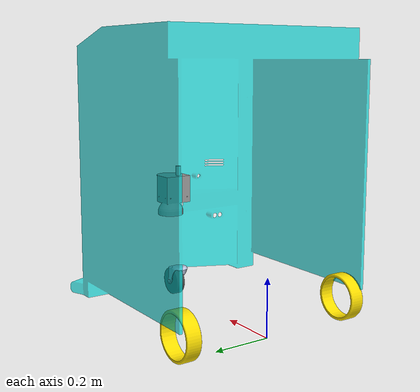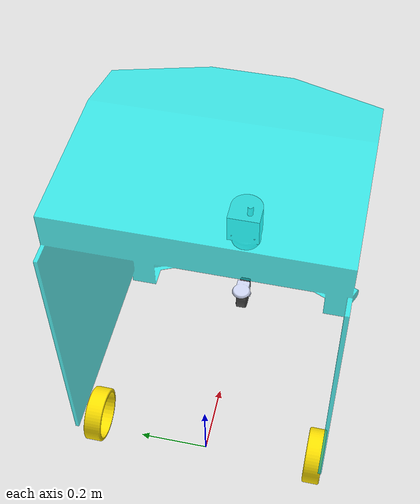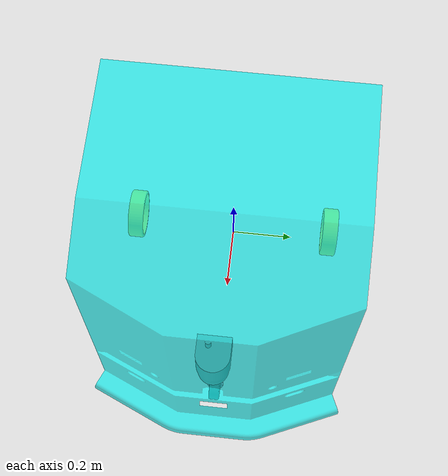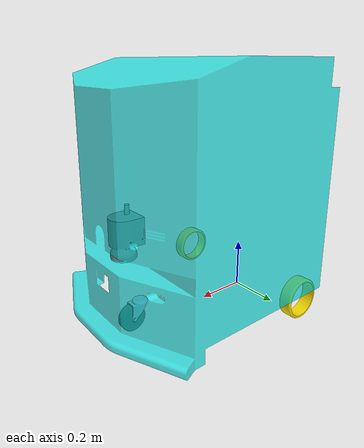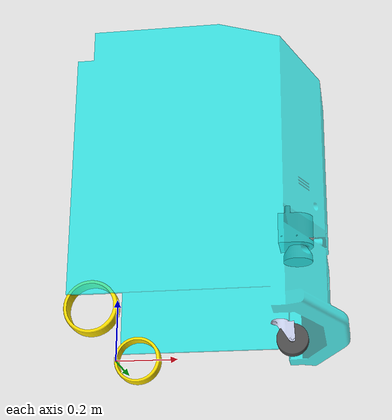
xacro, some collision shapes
<?xml version="1.0"?>
<robot name="d8_1000" xmlns:xacro="http://www.ros.org/wiki/xacro">
<xacro:property name="M_PI" value="3.1415926"/>
<xacro:property name="pkg" value="$(find dhc_houdar_pkg)/urdf/scrubot/d8_1000" />
<xacro:property name="mesh_dir" value="package://dhc_houdar_pkg/urdf/scrubot/d8_1000/mesh"/>

<xacro:include filename="${pkg}/materials.xacro" />

<xacro:include filename="${pkg}/inertial.xacro" />

<xacro:include filename="${pkg}/chassis.xacro" />

<xacro:include filename="${pkg}/driving_wheel.xacro" />

<xacro:include filename="${pkg}/caster_wheel.xacro" />

<xacro:include filename="${pkg}/sensor/sick_551.xacro" />

<xacro:include filename="${pkg}/sensor/sonar_ks106.xacro" />

<xacro:include filename="${pkg}/sensor/imu.xacro" />

<xacro:include filename="${pkg}/gazebo.xacro" />

<!-- base_footprint -->
<xacro:property name="base_name" value="base_footprint"/>
<link name="${base_name}">
</link>

<xacro:property name="base_link_name" value="base_link"/>

<!-- body -->
<xacro:chassis  name="${base_link_name}" parent_link="${base_name}" meshes="${mesh_dir}/chassis_simple.stl"  >
</xacro:chassis>

<!-- driving wheel -->
<xacro:driving_wheel wheel_prefix="left" parent_link="${base_link_name}" left_right="1" mesh="${mesh_dir}/driving_wheel_surface.stl" >
 </xacro:driving_wheel>

<xacro:driving_wheel wheel_prefix="right" parent_link="${base_link_name}" left_right="-1" mesh="${mesh_dir}/driving_wheel_surface.stl" >
 </xacro:driving_wheel>

<!-- caster wheel -->
<xacro:caster_wheel wheel_prefix="front" parent_link="${base_link_name}" left_right="1" mesh="${mesh_dir}" >
 </xacro:caster_wheel>

<!-- laser -->
<xacro:laser name="sick_laser_551" parent_link="${base_link_name}"  mesh="${mesh_dir}/sick_551.stl" >
 </xacro:laser>

<!-- sonar -->
<xacro:sonar name="s106_sonar" parent_link="${base_link_name}" mesh="${mesh_dir}/sonar.stl" >
</xacro:sonar>

</robot>

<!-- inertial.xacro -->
<!-- Thanks to Martin Guenther
  see https://github.com/uos/uos_tools/blob/fuerte/uos_common_urdf/common.xacro and
  see http://answers.gazebosim.org/question/4372/the-inertia-matrix-explained/ -->
<robot xmlns:xacro="http://www.ros.org/wiki/xacro">
  <!--xacro:property name="M_PI" value="3.1415926535897931" /-->

  <!-- see https://secure.wikimedia.org/wikipedia/en/wiki/List_of_moment_of_inertia_tensors -->

  <!-- #################### versions without origin #################### -->
  <xacro:macro name="sphere_inertial" params="radius mass">
    <inertial>
      <mass value="${mass}" />
      <origin xyz="0 0 0" />
      <inertia ixx="${0.4 * mass * radius * radius}" ixy="0.0" ixz="0.0"
        iyy="${0.4 * mass * radius * radius}" iyz="0.0"
        izz="${0.4 * mass * radius * radius}" />
    </inertial>
  </xacro:macro>

  <xacro:macro name="cylinder_inertial" params="radius length mass">
    <inertial>
      <mass value="${mass}" />
      <origin xyz="0 0 0" />
      <inertia ixx="${0.0833333 * mass * (3 * radius * radius + length * length)}" ixy="0.0" ixz="0.0"
        iyy="${0.0833333 * mass * (3 * radius * radius + length * length)}" iyz="0.0"
        izz="${0.5 * mass * radius * radius}" />
    </inertial>
  </xacro:macro>

  <xacro:macro name="box_inertial" params="x y z mass">
    <inertial>
      <mass value="${mass}" />
      <origin xyz="0 0 0" />
      <inertia ixx="${0.0833333 * mass * (y*y + z*z)}" ixy="0.0" ixz="0.0"
        iyy="${0.0833333 * mass * (x*x + z*z)}" iyz="0.0"
        izz="${0.0833333 * mass * (x*x + y*y)}" />
    </inertial>
  </xacro:macro>

  <!-- #################### versions with origin #################### -->
  <xacro:macro name="sphere_inertial_with_origin" params="radius mass *origin">
    <inertial>
      <mass value="${mass}" />
      <insert_block name="origin" />
      <inertia ixx="${0.4 * mass * radius * radius}" ixy="0.0" ixz="0.0"
        iyy="${0.4 * mass * radius * radius}" iyz="0.0"
        izz="${0.4 * mass * radius * radius}" />
    </inertial>
  </xacro:macro>

  <xacro:macro name="cylinder_inertial_with_origin" params="radius length mass *origin">
    <inertial>
      <mass value="${mass}" />
      <insert_block name="origin" />
      <inertia ixx="${0.0833333 * mass * (3 * radius * radius + length * length)}" ixy="0.0" ixz="0.0"
        iyy="${0.0833333 * mass * (3 * radius * radius + length * length)}" iyz="0.0"
        izz="${0.5 * mass * radius * radius}" />
    </inertial>
  </xacro:macro>

  <xacro:macro name="box_inertial_with_origin" params="x y z mass *origin">
    <inertial>
      <mass value="${mass}" />
      <insert_block name="origin" />
      <inertia ixx="${0.0833333 * mass * (y*y + z*z)}" ixy="0.0" ixz="0.0"
        iyy="${0.0833333 * mass * (x*x + z*z)}" iyz="0.0"
        izz="${0.0833333 * mass * (x*x + y*y)}" />
    </inertial>
  </xacro:macro>

</robot>

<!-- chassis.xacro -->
<robot xmlns:xacro="http://www.ros.org/wiki/xacro">
 <!--xacro:property name="M_PI" value="3.14159"/-->
  <!-- Base Properties -->
  <xacro:property name="mass_base" value="100.0" />

  <xacro:property name="base_x_size" value="0.6" />
  <xacro:property name="base_y_size" value="0.57" />
  <xacro:property name="base_z_size" value="0.68" />

  <xacro:property name="driving_wheel2base_rear_dist" value="0.075" />
  <xacro:property name="driving_wheel2ground_dist" value="0.188" />
  <xacro:property name="crash_resistant_edge_length" value="0.76625" />
  <xacro:property name="crash_resistant_edge_down2ground" value="0.0554" />

<xacro:property name="base_down2ground" value="0.156" />

  <!-- conf for chassis_simple.stl -->
<xacro:property name="offset_x" value="${-driving_wheel2base_rear_dist}" />
<xacro:property name="offset_y" value="${-crash_resistant_edge_length/2}" />
<xacro:property name="offset_z" value="${crash_resistant_edge_down2ground}" />

 <xacro:macro name="default_inertial" params="mass">
    <inertial>
      <mass value="${mass}" />
      <inertia ixx="1.0" ixy="0.0" ixz="0.0" iyy="1.0" iyz="0.0" izz="1.0" />
    </inertial>
  </xacro:macro>

  <xacro:macro name="chassis" params="name parent_link meshes">

    <link name="${name}">

       <visual>
        <origin xyz="${offset_x} ${offset_y} ${offset_z}" rpy="0 0 0" />
         <!--origin xyz="${base_x_size/2.0-driving_wheel2base_rear_dist} 0 ${base_z_size/2.0+base_down2ground}" rpy="0 0 0" /-->
        <geometry>
          <mesh filename="${meshes}"/>
          <!--box size="${base_x_size} ${base_y_size} ${base_z_size}" /-->
        </geometry>
        <xacro:insert_block name="material_Azure2" />
      </visual>

      <collision>
       <!--origin xyz="${offset_x} ${offset_y} ${offset_z}" rpy="0 0 0" /-->
       <origin xyz="${base_x_size/2.0-driving_wheel2base_rear_dist} 0 ${base_z_size/2.0+base_down2ground}" rpy="0 0 0" />
        <geometry>
          <!--mesh filename="${meshes}"/-->
          <box size="${base_x_size} ${base_y_size} ${base_z_size}" />
        </geometry>
      </collision>
      <xacro:default_inertial mass="${mass_base}"/>
      <!--xacro:box_inertial x="${base_x_size}" y="${base_y_size}"  z="${base_z_size}" mass="${mass_base}" /-->
    </link>

    <joint name="${parent_link}_${name}_joint" type="fixed">
      <parent link="${parent_link}"/>
      <child link="${name}"/>
      <origin xyz="0 0 0" rpy="0 0 0" />
    </joint>

    <gazebo reference="${name}">
      <material>Gazebo/Blue</material>
    </gazebo>

  </xacro:macro>
</robot>

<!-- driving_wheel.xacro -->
<robot xmlns:xacro="http://www.ros.org/wiki/xacro">

  <!--xacro:property name="M_PI" value="3.14159"/-->
  <!-- Wheel Properties -->
  <xacro:property name="wheel_separation" value="0.64" />
  <xacro:property name="wheel_radius" value="0.08" />

  <xacro:property name="driving_wheel_width" value="0.065" />
  <xacro:property name="driving_wheel_radius" value="${wheel_radius}" />
  <xacro:property name="mass_driving_wheel" value="0.5" />
  <xacro:property name="mechanicalReductionRatio" value ="21.0" />

  <xacro:property name="driving_wheel_base_dx" value="0.0" />
  <xacro:property name="driving_wheel_base_dy" value="${wheel_separation/2.0}" />
  <xacro:property name="driving_wheel_base_dz" value="${driving_wheel_radius}" />

  <xacro:macro name="driving_wheel" params="wheel_prefix parent_link left_right mesh">

    <link name="${wheel_prefix}_driving_wheel_link">

      <xacro:cylinder_inertial mass="${mass_driving_wheel}" radius="${driving_wheel_radius}" length="${driving_wheel_width}">
      </xacro:cylinder_inertial>
      <visual>
        <origin xyz="${-driving_wheel_radius} ${left_right*driving_wheel_width/2.0} ${-left_right*driving_wheel_radius}" rpy="${left_right*M_PI/2.0} 0 0" />
        <!--origin xyz="0 0 0" rpy="${ left_right * M_PI/2 } 0 0"/-->
        <geometry>
          <mesh filename="${mesh}" />
         <!-- cylinder length="${driving_wheel_width}" radius="${driving_wheel_radius}"/ -->
        </geometry>
        <xacro:insert_block name="material_yellow" />
      </visual>

      <collision>
      <!--origin xyz="${-driving_wheel_radius} ${left_right*driving_wheel_width/2.0} ${-left_right*driving_wheel_radius}" rpy="${left_right*M_PI/2.0} 0 0" /-->
      <origin xyz="0 0 0" rpy="${ left_right * M_PI/2 } 0 0"/>
         <geometry>
          <cylinder length="${driving_wheel_width}" radius="${driving_wheel_radius}" />
         </geometry>
      </collision>

    </link>

    <!-- gazebo color-->
    <gazebo reference="${wheel_prefix}_driving_wheel_link">
      <material>Gazebo/Yellow</material>
    </gazebo>

    <!-- gazebo dynamics-->

     <!-- joint -->
    <joint name="${wheel_prefix}_driving_wheel_joint" type="continuous">
      <origin xyz="${driving_wheel_base_dx} ${left_right*driving_wheel_base_dy} ${driving_wheel_base_dz}" rpy="0 0 0" />
      <parent link="${parent_link}"/>
      <child link="${wheel_prefix}_driving_wheel_link"/>
      <axis xyz="0 1 0" rpy="0 0 0" />
       <!--limit effort="100" velocity="20.0" /-->
    </joint>

    <!-- transmission -->
    <transmission name="${wheel_prefix}_driving_wheel_trans" type="SimpleTransmission">

       <type>transmission_interface/SimpleTransmission</type>

      <actuator name="${wheel_prefix}_driving_wheel_motor">
        <mechanicalReduction>${mechanicalReductionRatio}</mechanicalReduction>
      </actuator>

      <joint name="${wheel_prefix}_driving_wheel_joint">
        <hardwareInterface>VelocityJointInterface</hardwareInterface>
      </joint>

    </transmission>

  </xacro:macro>
</robot>

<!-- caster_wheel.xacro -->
<robot xmlns:xacro="http://www.ros.org/wiki/xacro">
<!--
  caster wheel and joints defined
-->
  <!--xacro:property name="M_PI" default="3.14159"/-->

<xacro:property name="caster_wheel_mass" value="200" />
<xacro:property name="caster_wheel_radius" value="0.05" />
<xacro:property name="caster_wheel_width" value="0.037" />
<!-- the dist bet rotate axis and rotation object center in x dir-->
<xacro:property name="caster_wheel_dx" value="0.038" />
<!-- the dist bet rotate axis and rotation object center in y dir-->
<xacro:property name="caster_wheel_dy" value="0.0" />
<xacro:property name="caster_wheel_dz" value="-0.0625" />

<!-- the dist bet caster rotation object center and base in x dir-->
<xacro:property name="caster_wheel_base_dx" value="0.524" />
<!-- the dist bet caster rotation object center and base in y dir-->
<xacro:property name="caster_wheel_base_dy" value="0.0" />
<!-- the dist bet caster rotation object top and base in z dir-->
<xacro:property name="caster_wheel_base_dz" value="${caster_wheel_radius-caster_wheel_dz}" />

<xacro:property name="mass_caster_wheel" value="5" />

<xacro:property name="caster_wheel_rotation_radius" value="0.03" />
<xacro:property name="caster_wheel_rotation_center2end" value="0.07275" />

<xacro:macro name="caster_wheel" params="wheel_prefix parent_link left_right mesh">

  <link name="${wheel_prefix}_caster_rotation_link">

    <inertial>
      <mass value="${mass_caster_wheel}"/>
      <origin xyz="0 0 0"/>
      <inertia ixx="0.012411765597" ixy="-0.000711733678" ixz="0.00050272983" iyy="0.015218160428" iyz="-0.000004273467" izz="0.011763977943"/>
    </inertial>

    <visual>
      <origin xyz="${-caster_wheel_rotation_radius} ${-caster_wheel_rotation_radius} ${-caster_wheel_rotation_center2end}" rpy="0 0 0" />
      <geometry>
        <mesh filename="${mesh}/caster_wheel_rotation.stl" />
      </geometry>
      <xacro:insert_block name="material_silver" />
    </visual>

    <collision>
    <origin xyz="${-caster_wheel_rotation_radius} ${-caster_wheel_rotation_radius} ${-caster_wheel_rotation_center2end}" rpy="0 0 0" />
      <geometry>
        <mesh filename="${mesh}/caster_wheel_rotation.stl" />
      </geometry>
    </collision>

  </link>
  <!-- rotation color-->
  <gazebo reference="${wheel_prefix}_caster_rotation_link">
    <material>Gazebo/Grey</material>
  </gazebo>

  <link name="${wheel_prefix}_caster_wheel_link">
    <collision>
      <!--
       to konw the rotate and trans detail, please see drivel_wheel.xacro
      -->
      <origin xyz="${-caster_wheel_radius} ${left_right*caster_wheel_width/2.0} ${-left_right*caster_wheel_radius}" rpy="${left_right*M_PI/2.0} 0 0" />
      <geometry>
        <mesh filename="${mesh}/caster_wheel.stl" />
      </geometry>
    </collision>

    <xacro:cylinder_inertial mass="${caster_wheel_mass}" radius="${caster_wheel_radius}" length="${caster_wheel_width}">
    </xacro:cylinder_inertial>

    <visual>
    <origin xyz="${-caster_wheel_radius} ${left_right*caster_wheel_width/2.0} ${-left_right*caster_wheel_radius}" rpy="${left_right*M_PI/2.0} 0 0" />
      <geometry>
        <mesh filename="${mesh}/caster_wheel.stl" />
      </geometry>
      <xacro:insert_block name="material_dark_grey" />
    </visual>

  </link>
    <!-- caster_wheel color-->
  <gazebo reference="${wheel_prefix}_caster_wheel_link">
    <material>Gazebo/DarkGrey</material>
  </gazebo>

  <!-- caster rotation to base joint-->
  <joint name="${wheel_prefix}_caster_rotation_joint" type="continuous">
    <origin xyz="${caster_wheel_base_dx} ${-caster_wheel_base_dy * left_right} ${caster_wheel_base_dz}" rpy="0 0 0" />
    <parent link="${parent_link}" />
    <child link="${wheel_prefix}_caster_rotation_link" />
    <axis xyz="0 0 1" />
    <dynamics damping="0.01" friction="0.0"/>
  </joint>
 <!-- caster wheel to catster rotation joint-->
  <joint name="${wheel_prefix}_caster_wheel_joint" type="continuous">
    <origin xyz="${caster_wheel_dx} ${-caster_wheel_dy * left_right} ${caster_wheel_dz}" rpy="0 0 0" />
    <parent link="${wheel_prefix}_caster_rotation_link" />
    <child link="${wheel_prefix}_caster_wheel_link" />
    <axis xyz="0 1 0" />
  </joint>

</xacro:macro>
</robot>

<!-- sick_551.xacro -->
<robot xmlns:xacro="http://www.ros.org/wiki/xacro">
<!-- chq define the laser glass cylinbe center is the laser cord center -->

 <xacro:property name="laser_rect_x" value="0.059" />

  <xacro:property name="laser_glass_radius" value="0.051" />
  <xacro:property name="laser_glass_thick" value="0.017" />

  <xacro:property name="laser_x" value="${laser_rect_x+laser_glass_radius}" />
  <xacro:property name="laser_y" value="0.102" />
  <xacro:property name="laser_z" value="0.187" />

  <xacro:property name="laser_base_x" value="0.586" />
  <xacro:property name="laser_base_y" value="0.0" />
  <xacro:property name="laser_base_z" value="0.3138" />

  <xacro:macro name="laser" params="name parent_link mesh" >
    <!-- Hokuyo Laser -->
    <link name="${name}_link">

      <collision>
        <origin xyz="${-laser_rect_x} ${-laser_glass_radius} ${laser_glass_thick/2.0-laser_z}" rpy="0 0 0"/>
        <geometry>
          <box size="${laser_x} ${laser_y} ${laser_z}"/>
        </geometry>
      </collision>

      <visual>
      <origin xyz="${-laser_rect_x} ${-laser_glass_radius} ${laser_glass_thick/2.0-laser_z}" rpy="0 0 0"/>
        <geometry>
          <mesh filename="${mesh}"/>
        </geometry>
        <xacro:insert_block name="material_light_grey" />
      </visual>

      <inertial>
        <mass value="0.1" />
       <origin xyz="${-laser_rect_x} ${-laser_glass_radius} ${laser_glass_thick/2.0-laser_z}" rpy="0 0 0"/>
        <inertia ixx="1e-6" ixy="0" ixz="0" iyy="1e-6" iyz="0" izz="1e-6" />
      </inertial>
    </link>

  <!-- laser -->
    <gazebo reference="${name}_link">
      <material>Gazebo/Grey</material>
      <sensor type="gpu_ray" name="head_laser_sensor">
    <!--sensor type="ray" name="head_hokuyo_sensor"-->
        <pose>0 0 0 0 0 0</pose>
        <!--visualize the scan  ray line chq -->
        <visualize>true</visualize>
        <update_rate>25</update_rate>
        <ray>
          <scan>
            <horizontal>
              <samples>720</samples>
              <resolution>0.5</resolution>
              <min_angle>${-M_PI/2}</min_angle>
              <max_angle>${M_PI/2}</max_angle>
            </horizontal>
          </scan>
          <range>
            <min>0.01</min>
            <max>30.0</max>
            <resolution>0.01</resolution>
          </range>
          <noise>
            <type>gaussian</type>
            <mean>0.0</mean>
            <stddev>0.01</stddev>
          </noise>
        </ray>
        <plugin name="gazebo_ros_head_hokuyo_controller" filename="libgazebo_ros_gpu_laser.so">
    <!--plugin name="gazebo_ros_head_hokuyo_controller" filename="libgazebo_ros_laser.so"-->
          <!-- specify the publishing scan topic name  -->
          <topicName>${name}/scan</topicName>
          <frameName>${name}_link</frameName>
        </plugin>
      </sensor>
    </gazebo>

    <joint name="lase_joint" type="fixed">
      <parent link="${parent_link}" />
      <child link="${name}_link" />
      <!-- attention -->
      <axis xyz="1 0 0"  rpy="0 0 0"/>
      <!-- origin cord spcified  outsidely -->
      <origin xyz="${laser_base_x} ${laser_base_y} ${laser_base_z}" rpy="${-M_PI} 0 0" />
    </joint>

  </xacro:macro>

</robot>

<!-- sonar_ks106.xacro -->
<robot xmlns:xacro="http://www.ros.org/wiki/xacro">
  <xacro:property name="sonar_base_x" value="0.361" />
  <xacro:property name="sonar_base_y" value="0.0" />
  <xacro:property name="sonar_base_z" value="0.2073" />

  <xacro:macro name="sonar" params="name parent_link mesh">

  <!-- Front Sonar -->

  <link name="${name}">
    <collision>
      <origin xyz="0 0 0" rpy="0 0 0"/>
      <geometry>
        <box size="0 0 0"/>
      </geometry>
    </collision>

    <visual>
      <origin xyz="0 0 0" rpy="0 0 0"/>
      <geometry>
        <mesh filename="${mesh}"/>
      </geometry>
      <xacro:insert_block name="material_sonar" />
    </visual>

    <inertial>
      <mass value="0.0001"/>
      <origin xyz="0 0 0"/>
      <inertia ixx="1" ixy="0" ixz="0" iyy="1" iyz="0" izz="1"/>
    </inertial>

  </link>

  <gazebo reference="${name}">
    <material value="Gazebo/Yellow"/>
  </gazebo>

  <joint name="${parent_link}_${name}_joint" type="fixed">
     <origin xyz="${sonar_base_x} ${sonar_base_y} ${sonar_base_z}" rpy="0 0 0"/>
    <parent link="${parent_link}"/>
    <child link="${name}"/>
  </joint>

  </xacro:macro>

</robot>
